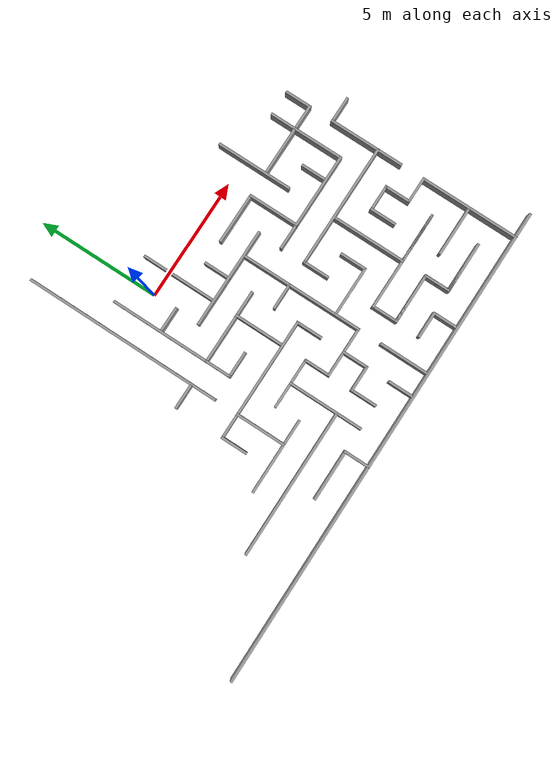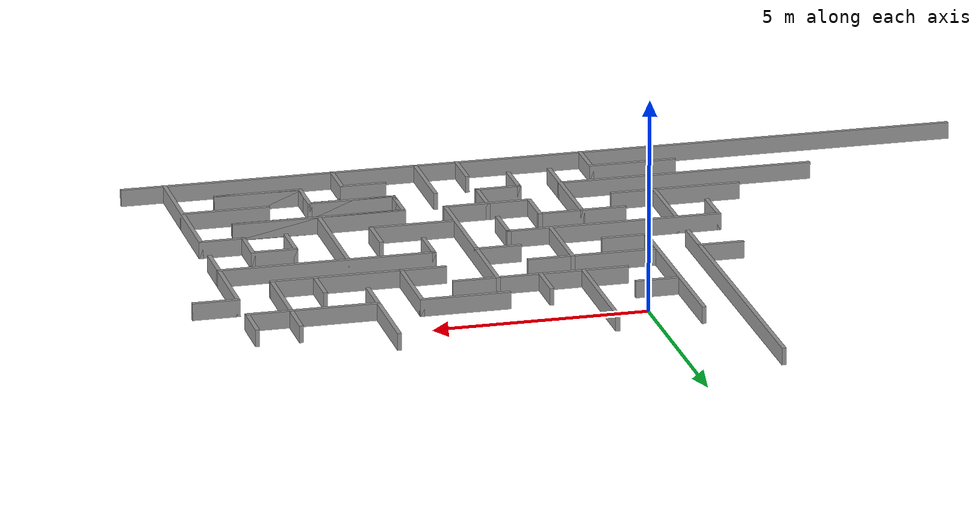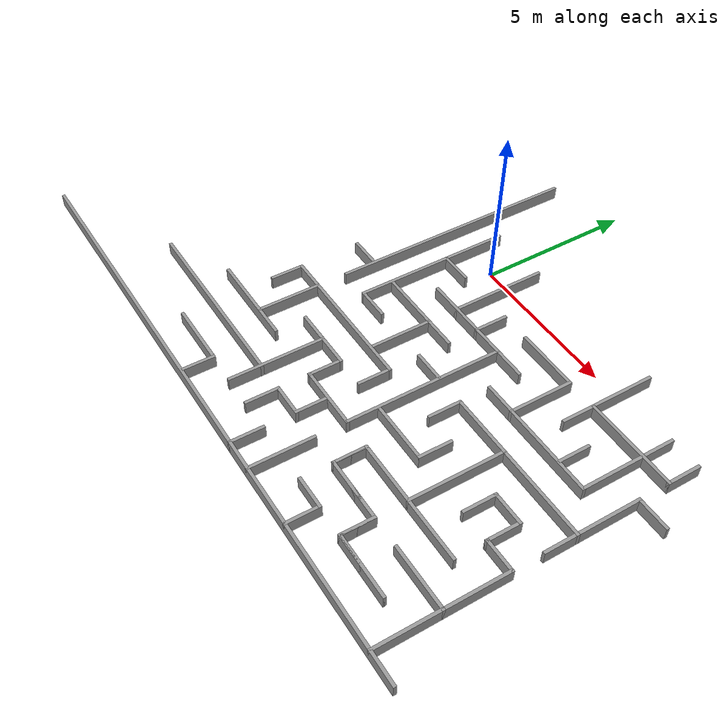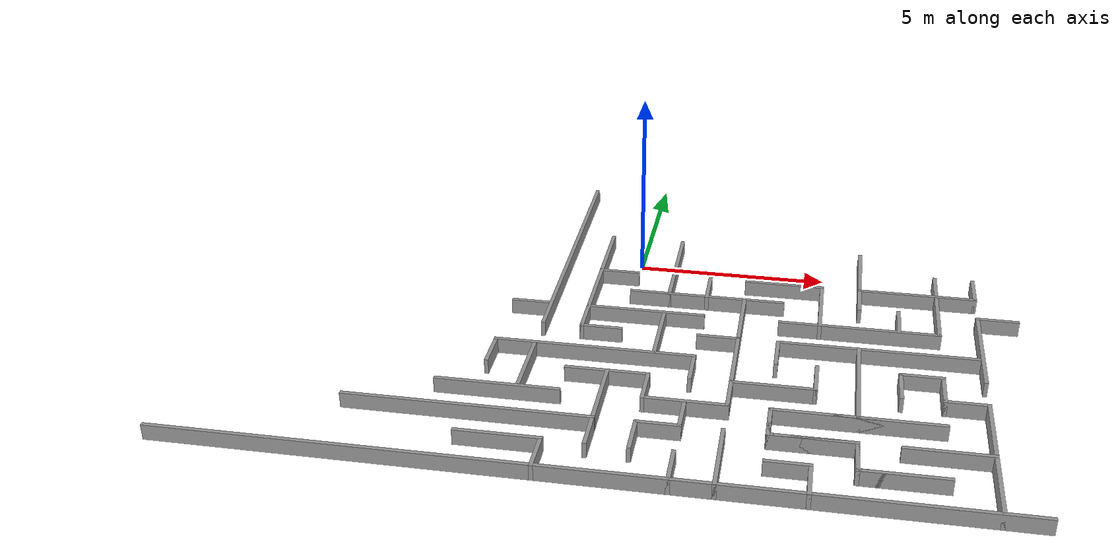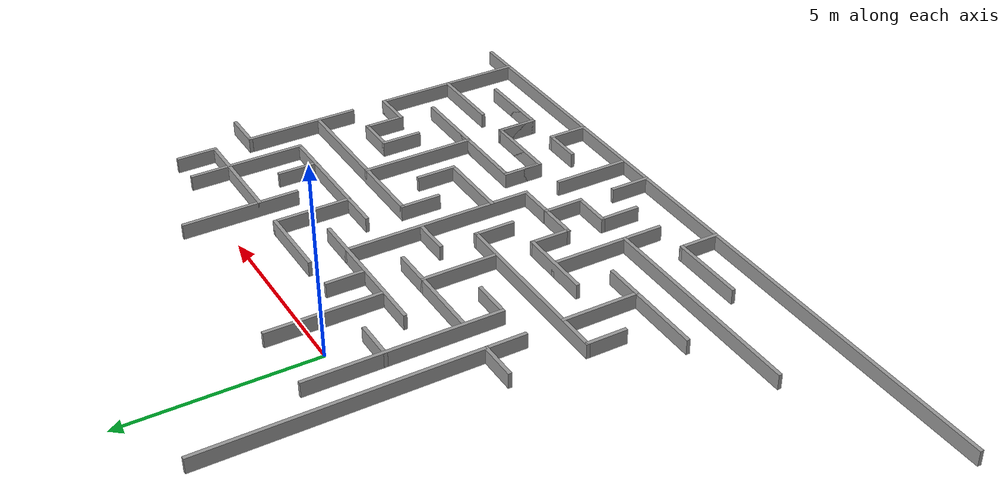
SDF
<sdf version="1.7">
 <model name="turtlebot3_maze_3">
  <link name="Wall_13">
   <collision name="Wall_13_Collision">
    <geometry><box><size>1.1 0.1 0.4</size></box></geometry>
    <pose>0 0 0.2 0 -0 0</pose>
   </collision>
   <visual name="Wall_13_Visual">
    <pose>0 0 0.2 0 -0 0</pose>
    <geometry><box><size>1.1 0.1 0.4</size></box></geometry>
    <material>
     <script><uri>file://media/materials/scripts/gazebo.material</uri><name>Gazebo/Grey</name></script>
     <ambient>1 1 1 1</ambient>
    </material>
    <meta><layer>0</layer></meta>
   </visual>
   <pose>-2.5 -3 0 0 -0 0</pose>
  </link>
  <link name="Wall_15">
   <collision name="Wall_15_Collision">
    <geometry><box><size>1.1 0.1 0.4</size></box></geometry>
    <pose>0 0 0.2 0 -0 0</pose>
   </collision>
   <visual name="Wall_15_Visual">
    <pose>0 0 0.2 0 -0 0</pose>
    <geometry><box><size>1.1 0.1 0.4</size></box></geometry>
    <material>
     <script><uri>file://media/materials/scripts/gazebo.material</uri><name>Gazebo/Grey</name></script>
     <ambient>1 1 1 1</ambient>
    </material>
    <meta><layer>0</layer></meta>
   </visual>
   <pose>-0.5 -1 0 0 -0 3.14159</pose>
  </link>
  <link name="Wall_17">
   <collision name="Wall_17_Collision">
    <geometry><box><size>5.1 0.1 0.4</size></box></geometry>
    <pose>0 0 0.2 0 -0 0</pose>
   </collision>
   <visual name="Wall_17_Visual">
    <pose>0 0 0.2 0 -0 0</pose>
    <geometry><box><size>5.1 0.1 0.4</size></box></geometry>
    <material>
     <script><uri>file://media/materials/scripts/gazebo.material</uri><name>Gazebo/Grey</name></script>
     <ambient>1 1 1 1</ambient>
    </material>
    <meta><layer>0</layer></meta>
   </visual>
   <pose>-1 -1.5 0 0 -0 -1.5708</pose>
  </link>
  <link name="Wall_18">
   <collision name="Wall_18_Collision">
    <geometry><box><size>1.1 0.1 0.4</size></box></geometry>
    <pose>0 0 0.2 0 -0 0</pose>
   </collision>
   <visual name="Wall_18_Visual">
    <pose>0 0 0.2 0 -0 0</pose>
    <geometry><box><size>1.1 0.1 0.4</size></box></geometry>
    <material>
     <script><uri>file://media/materials/scripts/gazebo.material</uri><name>Gazebo/Grey</name></script>
     <ambient>1 1 1 1</ambient>
    </material>
    <meta><layer>0</layer></meta>
   </visual>
   <pose>-0.5 -4 0 0 -0 0</pose>
  </link>
  <link name="Wall_20">
   <collision name="Wall_20_Collision">
    <geometry><box><size>3.1 0.1 0.4</size></box></geometry>
    <pose>0 0 0.2 0 -0 0</pose>
   </collision>
   <visual name="Wall_20_Visual">
    <pose>0 0 0.2 0 -0 0</pose>
    <geometry><box><size>3.1 0.1 0.4</size></box></geometry>
    <material>
     <script><uri>file://media/materials/scripts/gazebo.material</uri><name>Gazebo/Grey</name></script>
     <ambient>1 1 1 1</ambient>
    </material>
    <meta><layer>0</layer></meta>
   </visual>
   <pose>1 -0.5 0 0 -0 -1.5708</pose>
  </link>
  <link name="Wall_24">
   <collision name="Wall_24_Collision">
    <geometry><box><size>3.1 0.1 0.4</size></box></geometry>
    <pose>0 0 0.2 0 -0 0</pose>
   </collision>
   <visual name="Wall_24_Visual">
    <pose>0 0 0.2 0 -0 0</pose>
    <geometry><box><size>3.1 0.1 0.4</size></box></geometry>
    <material>
     <script><uri>file://media/materials/scripts/gazebo.material</uri><name>Gazebo/Grey</name></script>
     <ambient>1 1 1 1</ambient>
    </material>
    <meta><layer>0</layer></meta>
   </visual>
   <pose>0.5 -3 0 0 -0 0</pose>
  </link>
  <link name="Wall_259">
   <collision name="Wall_259_Collision">
    <geometry><box><size>3.1 0.1 0.4</size></box></geometry>
    <pose>0 0 0.2 0 -0 0</pose>
   </collision>
   <visual name="Wall_259_Visual">
    <pose>0 0 0.2 0 -0 0</pose>
    <geometry><box><size>3.1 0.1 0.4</size></box></geometry>
    <material>
     <script><uri>file://media/materials/scripts/gazebo.material</uri><name>Gazebo/Grey</name></script>
     <ambient>1 1 1 1</ambient>
    </material>
    <meta><layer>0</layer></meta>
   </visual>
   <pose>6 -0.5 0 0 -0 -1.5708</pose>
  </link>
  <link name="Wall_263">
   <collision name="Wall_263_Collision">
    <geometry><box><size>3.1 0.1 0.4</size></box></geometry>
    <pose>0 0 0.2 0 -0 0</pose>
   </collision>
   <visual name="Wall_263_Visual">
    <pose>0 0 0.2 0 -0 0</pose>
    <geometry><box><size>3.1 0.1 0.4</size></box></geometry>
    <material>
     <script><uri>file://media/materials/scripts/gazebo.material</uri><name>Gazebo/Grey</name></script>
     <ambient>1 1 1 1</ambient>
    </material>
    <meta><layer>0</layer></meta>
   </visual>
   <pose>7.5 -1 0 0 -0 0</pose>
  </link>
  <link name="Wall_264">
   <collision name="Wall_264_Collision">
    <geometry><box><size>1.1 0.1 0.4</size></box></geometry>
    <pose>0 0 0.2 0 -0 0</pose>
   </collision>
   <visual name="Wall_264_Visual">
    <pose>0 0 0.2 0 -0 0</pose>
    <geometry><box><size>1.1 0.1 0.4</size></box></geometry>
    <material>
     <script><uri>file://media/materials/scripts/gazebo.material</uri><name>Gazebo/Grey</name></script>
     <ambient>1 1 1 1</ambient>
    </material>
    <meta><layer>0</layer></meta>
   </visual>
   <pose>9 -0.5 0 0 -0 1.5708</pose>
  </link>
  <link name="Wall_266">
   <collision name="Wall_266_Collision">
    <geometry><box><size>2.1 0.1 0.4</size></box></geometry>
    <pose>0 0 0.2 0 -0 0</pose>
   </collision>
   <visual name="Wall_266_Visual">
    <pose>0 0 0.2 0 -0 0</pose>
    <geometry><box><size>2.1 0.1 0.4</size></box></geometry>
    <material>
     <script><uri>file://media/materials/scripts/gazebo.material</uri><name>Gazebo/Grey</name></script>
     <ambient>1 1 1 1</ambient>
    </material>
    <meta><layer>0</layer></meta>
   </visual>
   <pose>4 -1 0 0 -0 0</pose>
  </link>
  <link name="Wall_268">
   <collision name="Wall_268_Collision">
    <geometry><box><size>1.1 0.1 0.4</size></box></geometry>
    <pose>0 0 0.2 0 -0 0</pose>
   </collision>
   <visual name="Wall_268_Visual">
    <pose>0 0 0.2 0 -0 0</pose>
    <geometry><box><size>1.1 0.1 0.4</size></box></geometry>
    <material>
     <script><uri>file://media/materials/scripts/gazebo.material</uri><name>Gazebo/Grey</name></script>
     <ambient>1 1 1 1</ambient>
    </material>
    <meta><layer>0</layer></meta>
   </visual>
   <pose>9.5 -2 0 0 -0 3.14159</pose>
  </link>
  <link name="Wall_269">
   <collision name="Wall_269_Collision">
    <geometry><box><size>3.1 0.1 0.4</size></box></geometry>
    <pose>0 0 0.2 0 -0 0</pose>
   </collision>
   <visual name="Wall_269_Visual">
    <pose>0 0 0.2 0 -0 0</pose>
    <geometry><box><size>3.1 0.1 0.4</size></box></geometry>
    <material>
     <script><uri>file://media/materials/scripts/gazebo.material</uri><name>Gazebo/Grey</name></script>
     <ambient>1 1 1 1</ambient>
    </material>
    <meta><layer>0</layer></meta>
   </visual>
   <pose>9 -3.5 0 0 -0 -1.5708</pose>
  </link>
  <link name="Wall_271">
   <collision name="Wall_271_Collision">
    <geometry><box><size>3.1 0.1 0.4</size></box></geometry>
    <pose>0 0 0.2 0 -0 0</pose>
   </collision>
   <visual name="Wall_271_Visual">
    <pose>0 0 0.2 0 -0 0</pose>
    <geometry><box><size>3.1 0.1 0.4</size></box></geometry>
    <material>
     <script><uri>file://media/materials/scripts/gazebo.material</uri><name>Gazebo/Grey</name></script>
     <ambient>1 1 1 1</ambient>
    </material>
    <meta><layer>0</layer></meta>
   </visual>
   <pose>8 -1.5 0 0 -0 -1.5708</pose>
  </link>
  <link name="Wall_272">
   <collision name="Wall_272_Collision">
    <geometry><box><size>4.1 0.1 0.4</size></box></geometry>
    <pose>0 0 0.2 0 -0 0</pose>
   </collision>
   <visual name="Wall_272_Visual">
    <pose>0 0 0.2 0 -0 0</pose>
    <geometry><box><size>4.1 0.1 0.4</size></box></geometry>
    <material>
     <script><uri>file://media/materials/scripts/gazebo.material</uri><name>Gazebo/Grey</name></script>
     <ambient>1 1 1 1</ambient>
    </material>
    <meta><layer>0</layer></meta>
   </visual>
   <pose>6 -3 0 0 -0 3.14159</pose>
  </link>
  <link name="Wall_276">
   <collision name="Wall_276_Collision">
    <geometry><box><size>2.1 0.1 0.4</size></box></geometry>
    <pose>0 0 0.2 0 -0 0</pose>
   </collision>
   <visual name="Wall_276_Visual">
    <pose>0 0 0.2 0 -0 0</pose>
    <geometry><box><size>2.1 0.1 0.4</size></box></geometry>
    <material>
     <script><uri>file://media/materials/scripts/gazebo.material</uri><name>Gazebo/Grey</name></script>
     <ambient>1 1 1 1</ambient>
    </material>
    <meta><layer>0</layer></meta>
   </visual>
   <pose>5 -2 0 0 -0 -1.5708</pose>
  </link>
  <link name="Wall_278">
   <collision name="Wall_278_Collision">
    <geometry><box><size>1.1 0.1 0.4</size></box></geometry>
    <pose>0 0 0.2 0 -0 0</pose>
   </collision>
   <visual name="Wall_278_Visual">
    <pose>0 0 0.2 0 -0 0</pose>
    <geometry><box><size>1.1 0.1 0.4</size></box></geometry>
    <material>
     <script><uri>file://media/materials/scripts/gazebo.material</uri><name>Gazebo/Grey</name></script>
     <ambient>1 1 1 1</ambient>
    </material>
    <meta><layer>0</layer></meta>
   </visual>
   <pose>4 -4.5 0 0 -0 1.5708</pose>
  </link>
  <link name="Wall_279">
   <collision name="Wall_279_Collision">
    <geometry><box><size>5.1 0.1 0.4</size></box></geometry>
    <pose>0 0 0.2 0 -0 0</pose>
   </collision>
   <visual name="Wall_279_Visual">
    <pose>0 0 0.2 0 -0 0</pose>
    <geometry><box><size>5.1 0.1 0.4</size></box></geometry>
    <material>
     <script><uri>file://media/materials/scripts/gazebo.material</uri><name>Gazebo/Grey</name></script>
     <ambient>1 1 1 1</ambient>
    </material>
    <meta><layer>0</layer></meta>
   </visual>
   <pose>6.5 -4 0 0 -0 0</pose>
  </link>
  <link name="Wall_28">
   <collision name="Wall_28_Collision">
    <geometry><box><size>1.1 0.1 0.4</size></box></geometry>
    <pose>0 0 0.2 0 -0 0</pose>
   </collision>
   <visual name="Wall_28_Visual">
    <pose>0 0 0.2 0 -0 0</pose>
    <geometry><box><size>1.1 0.1 0.4</size></box></geometry>
    <material>
     <script><uri>file://media/materials/scripts/gazebo.material</uri><name>Gazebo/Grey</name></script>
     <ambient>1 1 1 1</ambient>
    </material>
    <meta><layer>0</layer></meta>
   </visual>
   <pose>2 -1.5 0 0 -0 -1.5708</pose>
  </link>
  <link name="Wall_281">
   <collision name="Wall_281_Collision">
    <geometry><box><size>3.1 0.1 0.4</size></box></geometry>
    <pose>0 0 0.2 0 -0 0</pose>
   </collision>
   <visual name="Wall_281_Visual">
    <pose>0 0 0.2 0 -0 0</pose>
    <geometry><box><size>3.1 0.1 0.4</size></box></geometry>
    <material>
     <script><uri>file://media/materials/scripts/gazebo.material</uri><name>Gazebo/Grey</name></script>
     <ambient>1 1 1 1</ambient>
    </material>
    <meta><layer>0</layer></meta>
   </visual>
   <pose>6 -5.5 0 0 -0 -1.5708</pose>
  </link>
  <link name="Wall_283">
   <collision name="Wall_283_Collision">
    <geometry><box><size>4.1 0.1 0.4</size></box></geometry>
    <pose>0 0 0.2 0 -0 0</pose>
   </collision>
   <visual name="Wall_283_Visual">
    <pose>0 0 0.2 0 -0 0</pose>
    <geometry><box><size>4.1 0.1 0.4</size></box></geometry>
    <material>
     <script><uri>file://media/materials/scripts/gazebo.material</uri><name>Gazebo/Grey</name></script>
     <ambient>1 1 1 1</ambient>
    </material>
    <meta><layer>0</layer></meta>
   </visual>
   <pose>6 -7 0 0 -0 3.14159</pose>
  </link>
  <link name="Wall_284">
   <collision name="Wall_284_Collision">
    <geometry><box><size>1.1 0.1 0.4</size></box></geometry>
    <pose>0 0 0.2 0 -0 0</pose>
   </collision>
   <visual name="Wall_284_Visual">
    <pose>0 0 0.2 0 -0 0</pose>
    <geometry><box><size>1.1 0.1 0.4</size></box></geometry>
    <material>
     <script><uri>file://media/materials/scripts/gazebo.material</uri><name>Gazebo/Grey</name></script>
     <ambient>1 1 1 1</ambient>
    </material>
    <meta><layer>0</layer></meta>
   </visual>
   <pose>4 -7.5 0 0 -0 -1.5708</pose>
  </link>
  <link name="Wall_285">
   <collision name="Wall_285_Collision">
    <geometry><box><size>2.1 0.1 0.4</size></box></geometry>
    <pose>0 0 0.2 0 -0 0</pose>
   </collision>
   <visual name="Wall_285_Visual">
    <pose>0 0 0.2 0 -0 0</pose>
    <geometry><box><size>2.1 0.1 0.4</size></box></geometry>
    <material>
     <script><uri>file://media/materials/scripts/gazebo.material</uri><name>Gazebo/Grey</name></script>
     <ambient>1 1 1 1</ambient>
    </material>
    <meta><layer>0</layer></meta>
   </visual>
   <pose>5 -8 0 0 -0 0</pose>
  </link>
  <link name="Wall_286">
   <collision name="Wall_286_Collision">
    <geometry><box><size>1.1 0.1 0.4</size></box></geometry>
    <pose>0 0 0.2 0 -0 0</pose>
   </collision>
   <visual name="Wall_286_Visual">
    <pose>0 0 0.2 0 -0 0</pose>
    <geometry><box><size>1.1 0.1 0.4</size></box></geometry>
    <material>
     <script><uri>file://media/materials/scripts/gazebo.material</uri><name>Gazebo/Grey</name></script>
     <ambient>1 1 1 1</ambient>
    </material>
    <meta><layer>0</layer></meta>
   </visual>
   <pose>6 -8.5 0 0 -0 -1.5708</pose>
  </link>
  <link name="Wall_287">
   <collision name="Wall_287_Collision">
    <geometry><box><size>2.1 0.1 0.4</size></box></geometry>
    <pose>0 0 0.2 0 -0 0</pose>
   </collision>
   <visual name="Wall_287_Visual">
    <pose>0 0 0.2 0 -0 0</pose>
    <geometry><box><size>2.1 0.1 0.4</size></box></geometry>
    <material>
     <script><uri>file://media/materials/scripts/gazebo.material</uri><name>Gazebo/Grey</name></script>
     <ambient>1 1 1 1</ambient>
    </material>
    <meta><layer>0</layer></meta>
   </visual>
   <pose>7 -9 0 0 -0 0</pose>
  </link>
  <link name="Wall_289">
   <collision name="Wall_289_Collision">
    <geometry><box><size>2.1 0.1 0.4</size></box></geometry>
    <pose>0 0 0.2 0 -0 0</pose>
   </collision>
   <visual name="Wall_289_Visual">
    <pose>0 0 0.2 0 -0 0</pose>
    <geometry><box><size>2.1 0.1 0.4</size></box></geometry>
    <material>
     <script><uri>file://media/materials/scripts/gazebo.material</uri><name>Gazebo/Grey</name></script>
     <ambient>1 1 1 1</ambient>
    </material>
    <meta><layer>0</layer></meta>
   </visual>
   <pose>8 -8 0 0 -0 3.14159</pose>
  </link>
  <link name="Wall_291">
   <collision name="Wall_291_Collision">
    <geometry><box><size>1.1 0.1 0.4</size></box></geometry>
    <pose>0 0 0.2 0 -0 0</pose>
   </collision>
   <visual name="Wall_291_Visual">
    <pose>0 0 0.2 0 -0 0</pose>
    <geometry><box><size>1.1 0.1 0.4</size></box></geometry>
    <material>
     <script><uri>file://media/materials/scripts/gazebo.material</uri><name>Gazebo/Grey</name></script>
     <ambient>1 1 1 1</ambient>
    </material>
    <meta><layer>0</layer></meta>
   </visual>
   <pose>7 -5.5 0 0 -0 1.5708</pose>
  </link>
  <link name="Wall_292">
   <collision name="Wall_292_Collision">
    <geometry><box><size>1.1 0.1 0.4</size></box></geometry>
    <pose>0 0 0.2 0 -0 0</pose>
   </collision>
   <visual name="Wall_292_Visual">
    <pose>0 0 0.2 0 -0 0</pose>
    <geometry><box><size>1.1 0.1 0.4</size></box></geometry>
    <material>
     <script><uri>file://media/materials/scripts/gazebo.material</uri><name>Gazebo/Grey</name></script>
     <ambient>1 1 1 1</ambient>
    </material>
    <meta><layer>0</layer></meta>
   </visual>
   <pose>7.5 -5 0 0 -0 0</pose>
  </link>
  <link name="Wall_293">
   <collision name="Wall_293_Collision">
    <geometry><box><size>1.1 0.1 0.4</size></box></geometry>
    <pose>0 0 0.2 0 -0 0</pose>
   </collision>
   <visual name="Wall_293_Visual">
    <pose>0 0 0.2 0 -0 0</pose>
    <geometry><box><size>1.1 0.1 0.4</size></box></geometry>
    <material>
     <script><uri>file://media/materials/scripts/gazebo.material</uri><name>Gazebo/Grey</name></script>
     <ambient>1 1 1 1</ambient>
    </material>
    <meta><layer>0</layer></meta>
   </visual>
   <pose>8 -5.5 0 0 -0 -1.5708</pose>
  </link>
  <link name="Wall_294">
   <collision name="Wall_294_Collision">
    <geometry><box><size>1.1 0.1 0.4</size></box></geometry>
    <pose>0 0 0.2 0 -0 0</pose>
   </collision>
   <visual name="Wall_294_Visual">
    <pose>0 0 0.2 0 -0 0</pose>
    <geometry><box><size>1.1 0.1 0.4</size></box></geometry>
    <material>
     <script><uri>file://media/materials/scripts/gazebo.material</uri><name>Gazebo/Grey</name></script>
     <ambient>1 1 1 1</ambient>
    </material>
    <meta><layer>0</layer></meta>
   </visual>
   <pose>8.5 -6 0 0 -0 0</pose>
  </link>
  <link name="Wall_295">
   <collision name="Wall_295_Collision">
    <geometry><box><size>4.1 0.1 0.4</size></box></geometry>
    <pose>0 0 0.2 0 -0 0</pose>
   </collision>
   <visual name="Wall_295_Visual">
    <pose>0 0 0.2 0 -0 0</pose>
    <geometry><box><size>4.1 0.1 0.4</size></box></geometry>
    <material>
     <script><uri>file://media/materials/scripts/gazebo.material</uri><name>Gazebo/Grey</name></script>
     <ambient>1 1 1 1</ambient>
    </material>
    <meta><layer>0</layer></meta>
   </visual>
   <pose>9 -8 0 0 -0 -1.5708</pose>
  </link>
  <link name="Wall_299">
   <collision name="Wall_299_Collision">
    <geometry><box><size>1.1 0.1 0.4</size></box></geometry>
    <pose>0 0 0.2 0 -0 0</pose>
   </collision>
   <visual name="Wall_299_Visual">
    <pose>0 0 0.2 0 -0 0</pose>
    <geometry><box><size>1.1 0.1 0.4</size></box></geometry>
    <material>
     <script><uri>file://media/materials/scripts/gazebo.material</uri><name>Gazebo/Grey</name></script>
     <ambient>1 1 1 1</ambient>
    </material>
    <meta><layer>0</layer></meta>
   </visual>
   <pose>7 -2.5 0 0 -0 -1.5708</pose>
  </link>
  <link name="Wall_30">
   <collision name="Wall_30_Collision">
    <geometry><box><size>4.1 0.1 0.4</size></box></geometry>
    <pose>0 0 0.2 0 -0 0</pose>
   </collision>
   <visual name="Wall_30_Visual">
    <pose>0 0 0.2 0 -0 0</pose>
    <geometry><box><size>4.1 0.1 0.4</size></box></geometry>
    <material>
     <script><uri>file://media/materials/scripts/gazebo.material</uri><name>Gazebo/Grey</name></script>
     <ambient>1 1 1 1</ambient>
    </material>
    <meta><layer>0</layer></meta>
   </visual>
   <pose>2 -2 0 0 -0 0</pose>
  </link>
  <link name="Wall_32">
   <collision name="Wall_32_Collision">
    <geometry><box><size>5.1 0.1 0.4</size></box></geometry>
    <pose>0 0 0.2 0 -0 0</pose>
   </collision>
   <visual name="Wall_32_Visual">
    <pose>0 0 0.2 0 -0 0</pose>
    <geometry><box><size>5.1 0.1 0.4</size></box></geometry>
    <material>
     <script><uri>file://media/materials/scripts/gazebo.material</uri><name>Gazebo/Grey</name></script>
     <ambient>1 1 1 1</ambient>
    </material>
    <meta><layer>0</layer></meta>
   </visual>
   <pose>3 -4.5 0 0 -0 -1.5708</pose>
  </link>
  <link name="Wall_33">
   <collision name="Wall_33_Collision">
    <geometry><box><size>2.1 0.1 0.4</size></box></geometry>
    <pose>0 0 0.2 0 -0 0</pose>
   </collision>
   <visual name="Wall_33_Visual">
    <pose>0 0 0.2 0 -0 0</pose>
    <geometry><box><size>2.1 0.1 0.4</size></box></geometry>
    <material>
     <script><uri>file://media/materials/scripts/gazebo.material</uri><name>Gazebo/Grey</name></script>
     <ambient>1 1 1 1</ambient>
    </material>
    <meta><layer>0</layer></meta>
   </visual>
   <pose>2 -7 0 0 -0 3.14159</pose>
  </link>
  <link name="Wall_34">
   <collision name="Wall_34_Collision">
    <geometry><box><size>1.1 0.1 0.4</size></box></geometry>
    <pose>0 0 0.2 0 -0 0</pose>
   </collision>
   <visual name="Wall_34_Visual">
    <pose>0 0 0.2 0 -0 0</pose>
    <geometry><box><size>1.1 0.1 0.4</size></box></geometry>
    <material>
     <script><uri>file://media/materials/scripts/gazebo.material</uri><name>Gazebo/Grey</name></script>
     <ambient>1 1 1 1</ambient>
    </material>
    <meta><layer>0</layer></meta>
   </visual>
   <pose>1 -6.5 0 0 -0 1.5708</pose>
  </link>
  <link name="Wall_35">
   <collision name="Wall_35_Collision">
    <geometry><box><size>2.1 0.1 0.4</size></box></geometry>
    <pose>0 0 0.2 0 -0 0</pose>
   </collision>
   <visual name="Wall_35_Visual">
    <pose>0 0 0.2 0 -0 0</pose>
    <geometry><box><size>2.1 0.1 0.4</size></box></geometry>
    <material>
     <script><uri>file://media/materials/scripts/gazebo.material</uri><name>Gazebo/Grey</name></script>
     <ambient>1 1 1 1</ambient>
    </material>
    <meta><layer>0</layer></meta>
   </visual>
   <pose>0 -6 0 0 -0 3.14159</pose>
  </link>
  <link name="Wall_38">
   <collision name="Wall_38_Collision">
    <geometry><box><size>1.1 0.1 0.4</size></box></geometry>
    <pose>0 0 0.2 0 -0 0</pose>
   </collision>
   <visual name="Wall_38_Visual">
    <pose>0 0 0.2 0 -0 0</pose>
    <geometry><box><size>1.1 0.1 0.4</size></box></geometry>
    <material>
     <script><uri>file://media/materials/scripts/gazebo.material</uri><name>Gazebo/Grey</name></script>
     <ambient>1 1 1 1</ambient>
    </material>
    <meta><layer>0</layer></meta>
   </visual>
   <pose>2.5 -4 0 0 -0 0</pose>
  </link>
  <link name="Wall_40">
   <collision name="Wall_40_Collision">
    <geometry><box><size>2.1 0.1 0.4</size></box></geometry>
    <pose>0 0 0.2 0 -0 0</pose>
   </collision>
   <visual name="Wall_40_Visual">
    <pose>0 0 0.2 0 -0 0</pose>
    <geometry><box><size>2.1 0.1 0.4</size></box></geometry>
    <material>
     <script><uri>file://media/materials/scripts/gazebo.material</uri><name>Gazebo/Grey</name></script>
     <ambient>1 1 1 1</ambient>
    </material>
    <meta><layer>0</layer></meta>
   </visual>
   <pose>4 -6 0 0 -0 0</pose>
  </link>
  <link name="Wall_41">
   <collision name="Wall_41_Collision">
    <geometry><box><size>1.1 0.1 0.4</size></box></geometry>
    <pose>0 0 0.2 0 -0 0</pose>
   </collision>
   <visual name="Wall_41_Visual">
    <pose>0 0 0.2 0 -0 0</pose>
    <geometry><box><size>1.1 0.1 0.4</size></box></geometry>
    <material>
     <script><uri>file://media/materials/scripts/gazebo.material</uri><name>Gazebo/Grey</name></script>
     <ambient>1 1 1 1</ambient>
    </material>
    <meta><layer>0</layer></meta>
   </visual>
   <pose>5 -5.5 0 0 -0 1.5708</pose>
  </link>
  <link name="Wall_43">
   <collision name="Wall_43_Collision">
    <geometry><box><size>2.1 0.1 0.4</size></box></geometry>
    <pose>0 0 0.2 0 -0 0</pose>
   </collision>
   <visual name="Wall_43_Visual">
    <pose>0 0 0.2 0 -0 0</pose>
    <geometry><box><size>2.1 0.1 0.4</size></box></geometry>
    <material>
     <script><uri>file://media/materials/scripts/gazebo.material</uri><name>Gazebo/Grey</name></script>
     <ambient>1 1 1 1</ambient>
    </material>
    <meta><layer>0</layer></meta>
   </visual>
   <pose>1 -4 0 0 -0 -1.5708</pose>
  </link>
  <link name="Wall_45">
   <collision name="Wall_45_Collision">
    <geometry><box><size>1.1 0.1 0.4</size></box></geometry>
    <pose>0 0 0.2 0 -0 0</pose>
   </collision>
   <visual name="Wall_45_Visual">
    <pose>0 0 0.2 0 -0 0</pose>
    <geometry><box><size>1.1 0.1 0.4</size></box></geometry>
    <material>
     <script><uri>file://media/materials/scripts/gazebo.material</uri><name>Gazebo/Grey</name></script>
     <ambient>1 1 1 1</ambient>
    </material>
    <meta><layer>0</layer></meta>
   </visual>
   <pose>2 -5.5 0 0 -0 1.5708</pose>
  </link>
  <link name="Wall_46">
   <collision name="Wall_46_Collision">
    <geometry><box><size>5.1 0.1 0.4</size></box></geometry>
    <pose>0 0 0.2 0 -0 0</pose>
   </collision>
   <visual name="Wall_46_Visual">
    <pose>0 0 0.2 0 -0 0</pose>
    <geometry><box><size>5.1 0.1 0.4</size></box></geometry>
    <material>
     <script><uri>file://media/materials/scripts/gazebo.material</uri><name>Gazebo/Grey</name></script>
     <ambient>1 1 1 1</ambient>
    </material>
    <meta><layer>0</layer></meta>
   </visual>
   <pose>-0.5 -5 0 0 -0 3.14159</pose>
  </link>
  <link name="Wall_47">
   <collision name="Wall_47_Collision">
    <geometry><box><size>1.1 0.1 0.4</size></box></geometry>
    <pose>0 0 0.2 0 -0 0</pose>
   </collision>
   <visual name="Wall_47_Visual">
    <pose>0 0 0.2 0 -0 0</pose>
    <geometry><box><size>1.1 0.1 0.4</size></box></geometry>
    <material>
     <script><uri>file://media/materials/scripts/gazebo.material</uri><name>Gazebo/Grey</name></script>
     <ambient>1 1 1 1</ambient>
    </material>
    <meta><layer>0</layer></meta>
   </visual>
   <pose>-3 -5.5 0 0 -0 -1.5708</pose>
  </link>
  <link name="Wall_49">
   <collision name="Wall_49_Collision">
    <geometry><box><size>2.1 0.1 0.4</size></box></geometry>
    <pose>0 0 0.2 0 -0 0</pose>
   </collision>
   <visual name="Wall_49_Visual">
    <pose>0 0 0.2 0 -0 0</pose>
    <geometry><box><size>2.1 0.1 0.4</size></box></geometry>
    <material>
     <script><uri>file://media/materials/scripts/gazebo.material</uri><name>Gazebo/Grey</name></script>
     <ambient>1 1 1 1</ambient>
    </material>
    <meta><layer>0</layer></meta>
   </visual>
   <pose>-2 -6 0 0 -0 -1.5708</pose>
  </link>
  <link name="Wall_51">
   <collision name="Wall_51_Collision">
    <geometry><box><size>3.1 0.1 0.4</size></box></geometry>
    <pose>0 0 0.2 0 -0 0</pose>
   </collision>
   <visual name="Wall_51_Visual">
    <pose>0 0 0.2 0 -0 0</pose>
    <geometry><box><size>3.1 0.1 0.4</size></box></geometry>
    <material>
     <script><uri>file://media/materials/scripts/gazebo.material</uri><name>Gazebo/Grey</name></script>
     <ambient>1 1 1 1</ambient>
    </material>
    <meta><layer>0</layer></meta>
   </visual>
   <pose>-2.5 -7 0 0 -0 3.14159</pose>
  </link>
  <link name="Wall_54">
   <collision name="Wall_54_Collision">
    <geometry><box><size>3.1 0.1 0.4</size></box></geometry>
    <pose>0 0 0.2 0 -0 0</pose>
   </collision>
   <visual name="Wall_54_Visual">
    <pose>0 0 0.2 0 -0 0</pose>
    <geometry><box><size>3.1 0.1 0.4</size></box></geometry>
    <material>
     <script><uri>file://media/materials/scripts/gazebo.material</uri><name>Gazebo/Grey</name></script>
     <ambient>1 1 1 1</ambient>
    </material>
    <meta><layer>0</layer></meta>
   </visual>
   <pose>0 -7.5 0 0 -0 -1.5708</pose>
  </link>
  <link name="Wall_56">
   <collision name="Wall_56_Collision">
    <geometry><box><size>6.1 0.1 0.4</size></box></geometry>
    <pose>0 0 0.2 0 -0 0</pose>
   </collision>
   <visual name="Wall_56_Visual">
    <pose>0 0 0.2 0 -0 0</pose>
    <geometry><box><size>6.1 0.1 0.4</size></box></geometry>
    <material>
     <script><uri>file://media/materials/scripts/gazebo.material</uri><name>Gazebo/Grey</name></script>
     <ambient>1 1 1 1</ambient>
    </material>
    <meta><layer>0</layer></meta>
   </visual>
   <pose>-3 -8 0 0 -0 3.14159</pose>
  </link>
  <link name="Wall_58">
   <collision name="Wall_58_Collision">
    <geometry><box><size>20.1 0.1 0.4</size></box></geometry>
    <pose>0 0 0.2 0 -0 0</pose>
   </collision>
   <visual name="Wall_58_Visual">
    <pose>0 0 0.2 0 -0 0</pose>
    <geometry><box><size>20.1 0.1 0.4</size></box></geometry>
    <material>
     <script><uri>file://media/materials/scripts/gazebo.material</uri><name>Gazebo/Grey</name></script>
     <ambient>1 1 1 1</ambient>
    </material>
    <meta><layer>0</layer></meta>
   </visual>
   <pose>0 -10 0 0 -0 0</pose>
  </link>
  <link name="Wall_71">
   <collision name="Wall_71_Collision">
    <geometry><box><size>2.1 0.1 0.4</size></box></geometry>
    <pose>0 0 0.2 0 -0 0</pose>
   </collision>
   <visual name="Wall_71_Visual">
    <pose>0 0 0.2 0 -0 0</pose>
    <geometry><box><size>2.1 0.1 0.4</size></box></geometry>
    <material>
     <script><uri>file://media/materials/scripts/gazebo.material</uri><name>Gazebo/Grey</name></script>
     <ambient>1 1 1 1</ambient>
    </material>
    <meta><layer>0</layer></meta>
   </visual>
   <pose>-2 -9 0 0 -0 0</pose>
  </link>
  <link name="Wall_72">
   <collision name="Wall_72_Collision">
    <geometry><box><size>1.1 0.1 0.4</size></box></geometry>
    <pose>0 0 0.2 0 -0 0</pose>
   </collision>
   <visual name="Wall_72_Visual">
    <pose>0 0 0.2 0 -0 0</pose>
    <geometry><box><size>1.1 0.1 0.4</size></box></geometry>
    <material>
     <script><uri>file://media/materials/scripts/gazebo.material</uri><name>Gazebo/Grey</name></script>
     <ambient>1 1 1 1</ambient>
    </material>
    <meta><layer>0</layer></meta>
   </visual>
   <pose>-1 -9.5 0 0 -0 -1.5708</pose>
  </link>
  <link name="Wall_74">
   <collision name="Wall_74_Collision">
    <geometry><box><size>1.1 0.1 0.4</size></box></geometry>
    <pose>0 0 0.2 0 -0 0</pose>
   </collision>
   <visual name="Wall_74_Visual">
    <pose>0 0 0.2 0 -0 0</pose>
    <geometry><box><size>1.1 0.1 0.4</size></box></geometry>
    <material>
     <script><uri>file://media/materials/scripts/gazebo.material</uri><name>Gazebo/Grey</name></script>
     <ambient>1 1 1 1</ambient>
    </material>
    <meta><layer>0</layer></meta>
   </visual>
   <pose>2 -9.5 0 0 -0 -1.5708</pose>
  </link>
  <link name="Wall_76">
   <collision name="Wall_76_Collision">
    <geometry><box><size>2.1 0.1 0.4</size></box></geometry>
    <pose>0 0 0.2 0 -0 0</pose>
   </collision>
   <visual name="Wall_76_Visual">
    <pose>0 0 0.2 0 -0 0</pose>
    <geometry><box><size>2.1 0.1 0.4</size></box></geometry>
    <material>
     <script><uri>file://media/materials/scripts/gazebo.material</uri><name>Gazebo/Grey</name></script>
     <ambient>1 1 1 1</ambient>
    </material>
    <meta><layer>0</layer></meta>
   </visual>
   <pose>3 -9 0 0 -0 -1.5708</pose>
  </link>
  <link name="Wall_78">
   <collision name="Wall_78_Collision">
    <geometry><box><size>1.1 0.1 0.4</size></box></geometry>
    <pose>0 0 0.2 0 -0 0</pose>
   </collision>
   <visual name="Wall_78_Visual">
    <pose>0 0 0.2 0 -0 0</pose>
    <geometry><box><size>1.1 0.1 0.4</size></box></geometry>
    <material>
     <script><uri>file://media/materials/scripts/gazebo.material</uri><name>Gazebo/Grey</name></script>
     <ambient>1 1 1 1</ambient>
    </material>
    <meta><layer>0</layer></meta>
   </visual>
   <pose>4.5 -9 0 0 -0 0</pose>
  </link>
  <link name="Wall_79">
   <collision name="Wall_79_Collision">
    <geometry><box><size>1.1 0.1 0.4</size></box></geometry>
    <pose>0 0 0.2 0 -0 0</pose>
   </collision>
   <visual name="Wall_79_Visual">
    <pose>0 0 0.2 0 -0 0</pose>
    <geometry><box><size>1.1 0.1 0.4</size></box></geometry>
    <material>
     <script><uri>file://media/materials/scripts/gazebo.material</uri><name>Gazebo/Grey</name></script>
     <ambient>1 1 1 1</ambient>
    </material>
    <meta><layer>0</layer></meta>
   </visual>
   <pose>5 -9.5 0 0 -0 -1.5708</pose>
  </link>
  <link name="Wall_8">
   <collision name="Wall_8_Collision">
    <geometry><box><size>8.1 0.1 0.4</size></box></geometry>
    <pose>0 0 0.2 0 -0 0</pose>
   </collision>
   <visual name="Wall_8_Visual">
    <pose>0 0 0.2 0 -0 0</pose>
    <geometry><box><size>8.1 0.1 0.4</size></box></geometry>
    <material>
     <script><uri>file://media/materials/scripts/gazebo.material</uri><name>Gazebo/Grey</name></script>
     <ambient>1 1 1 1</ambient>
    </material>
    <meta><layer>0</layer></meta>
   </visual>
   <pose>-2 0 0 0 -0 1.5708</pose>
  </link>
  <link name="Wall_81">
   <collision name="Wall_81_Collision">
    <geometry><box><size>2.1 0.1 0.4</size></box></geometry>
    <pose>0 0 0.2 0 -0 0</pose>
   </collision>
   <visual name="Wall_81_Visual">
    <pose>0 0 0.2 0 -0 0</pose>
    <geometry><box><size>2.1 0.1 0.4</size></box></geometry>
    <material>
     <script><uri>file://media/materials/scripts/gazebo.material</uri><name>Gazebo/Grey</name></script>
     <ambient>1 1 1 1</ambient>
    </material>
    <meta><layer>0</layer></meta>
   </visual>
   <pose>7 -9 0 0 -0 3.14159</pose>
  </link>
  <link name="Wall_82">
   <collision name="Wall_82_Collision">
    <geometry><box><size>1.1 0.1 0.4</size></box></geometry>
    <pose>0 0 0.2 0 -0 0</pose>
   </collision>
   <visual name="Wall_82_Visual">
    <pose>0 0 0.2 0 -0 0</pose>
    <geometry><box><size>1.1 0.1 0.4</size></box></geometry>
    <material>
     <script><uri>file://media/materials/scripts/gazebo.material</uri><name>Gazebo/Grey</name></script>
     <ambient>1 1 1 1</ambient>
    </material>
    <meta><layer>0</layer></meta>
   </visual>
   <pose>6 -8.5 0 0 -0 1.5708</pose>
  </link>
  <link name="Wall_83">
   <collision name="Wall_83_Collision">
    <geometry><box><size>2.1 0.1 0.4</size></box></geometry>
    <pose>0 0 0.2 0 -0 0</pose>
   </collision>
   <visual name="Wall_83_Visual">
    <pose>0 0 0.2 0 -0 0</pose>
    <geometry><box><size>2.1 0.1 0.4</size></box></geometry>
    <material>
     <script><uri>file://media/materials/scripts/gazebo.material</uri><name>Gazebo/Grey</name></script>
     <ambient>1 1 1 1</ambient>
    </material>
    <meta><layer>0</layer></meta>
   </visual>
   <pose>5 -8 0 0 -0 3.14159</pose>
  </link>
  <link name="Wall_84">
   <collision name="Wall_84_Collision">
    <geometry><box><size>1.1 0.1 0.4</size></box></geometry>
    <pose>0 0 0.2 0 -0 0</pose>
   </collision>
   <visual name="Wall_84_Visual">
    <pose>0 0 0.2 0 -0 0</pose>
    <geometry><box><size>1.1 0.1 0.4</size></box></geometry>
    <material>
     <script><uri>file://media/materials/scripts/gazebo.material</uri><name>Gazebo/Grey</name></script>
     <ambient>1 1 1 1</ambient>
    </material>
    <meta><layer>0</layer></meta>
   </visual>
   <pose>4 -7.5 0 0 -0 1.5708</pose>
  </link>
  <link name="Wall_85">
   <collision name="Wall_85_Collision">
    <geometry><box><size>4.1 0.1 0.4</size></box></geometry>
    <pose>0 0 0.2 0 -0 0</pose>
   </collision>
   <visual name="Wall_85_Visual">
    <pose>0 0 0.2 0 -0 0</pose>
    <geometry><box><size>4.1 0.1 0.4</size></box></geometry>
    <material>
     <script><uri>file://media/materials/scripts/gazebo.material</uri><name>Gazebo/Grey</name></script>
     <ambient>1 1 1 1</ambient>
    </material>
    <meta><layer>0</layer></meta>
   </visual>
   <pose>6 -7 0 0 -0 0</pose>
  </link>
  <link name="Wall_87">
   <collision name="Wall_87_Collision">
    <geometry><box><size>1.1 0.1 0.4</size></box></geometry>
    <pose>0 0 0.2 0 -0 0</pose>
   </collision>
   <visual name="Wall_87_Visual">
    <pose>0 0 0.2 0 -0 0</pose>
    <geometry><box><size>1.1 0.1 0.4</size></box></geometry>
    <material>
     <script><uri>file://media/materials/scripts/gazebo.material</uri><name>Gazebo/Grey</name></script>
     <ambient>1 1 1 1</ambient>
    </material>
    <meta><layer>0</layer></meta>
   </visual>
   <pose>2 -7.5 0 0 -0 -1.5708</pose>
  </link>
  <link name="Wall_88">
   <collision name="Wall_88_Collision">
    <geometry><box><size>1.1 0.1 0.4</size></box></geometry>
    <pose>0 0 0.2 0 -0 0</pose>
   </collision>
   <visual name="Wall_88_Visual">
    <pose>0 0 0.2 0 -0 0</pose>
    <geometry><box><size>1.1 0.1 0.4</size></box></geometry>
    <material>
     <script><uri>file://media/materials/scripts/gazebo.material</uri><name>Gazebo/Grey</name></script>
     <ambient>1 1 1 1</ambient>
    </material>
    <meta><layer>0</layer></meta>
   </visual>
   <pose>1.5 -8 0 0 -0 3.14159</pose>
  </link>
  <link name="Wall_89">
   <collision name="Wall_89_Collision">
    <geometry><box><size>1.1 0.1 0.4</size></box></geometry>
    <pose>0 0 0.2 0 -0 0</pose>
   </collision>
   <visual name="Wall_89_Visual">
    <pose>0 0 0.2 0 -0 0</pose>
    <geometry><box><size>1.1 0.1 0.4</size></box></geometry>
    <material>
     <script><uri>file://media/materials/scripts/gazebo.material</uri><name>Gazebo/Grey</name></script>
     <ambient>1 1 1 1</ambient>
    </material>
    <meta><layer>0</layer></meta>
   </visual>
   <pose>1 -8.5 0 0 -0 -1.5708</pose>
  </link>
  <static>1</static>
 </model>
</sdf>
